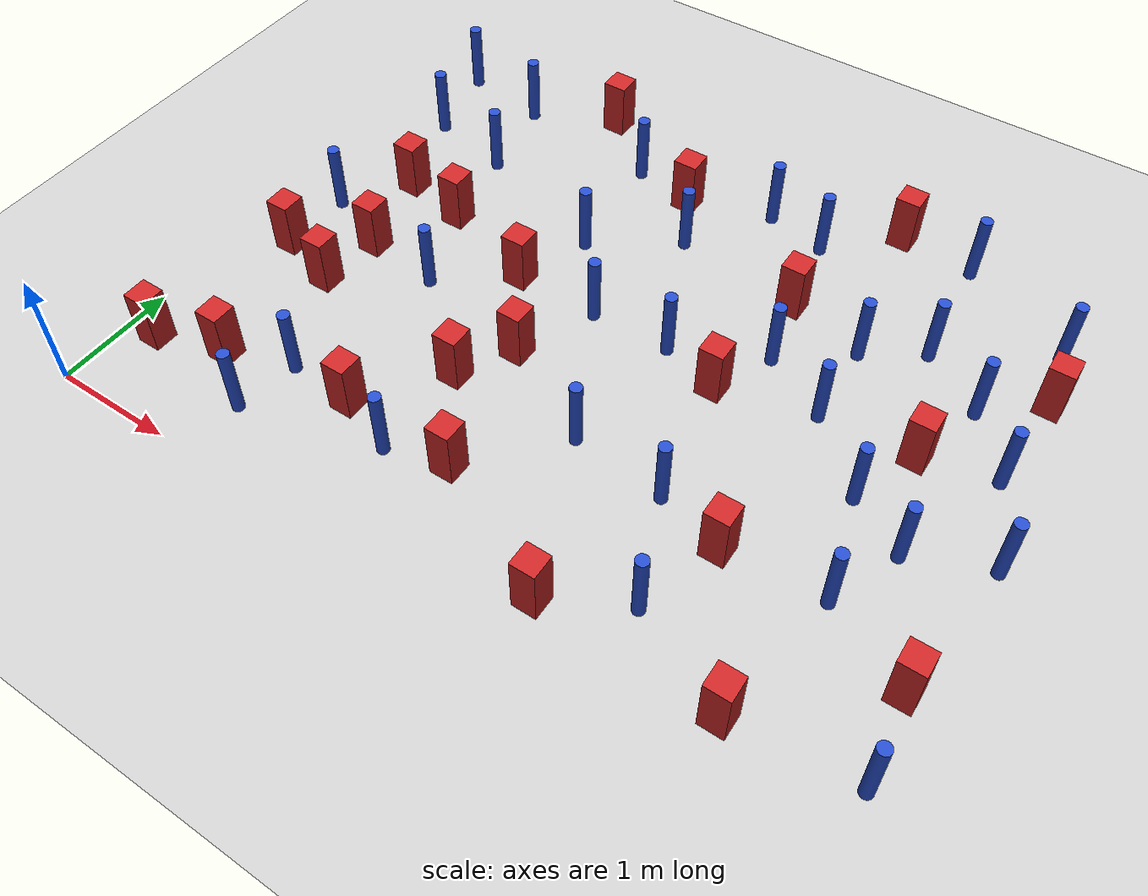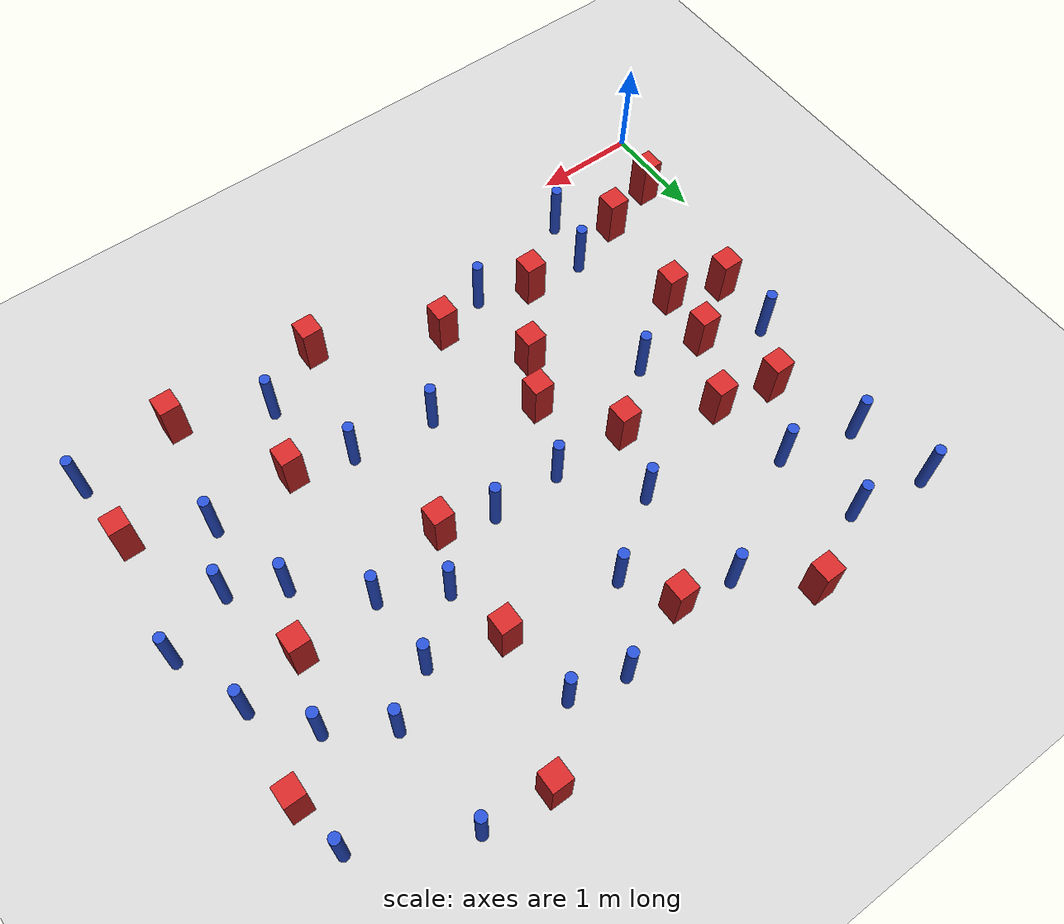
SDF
<sdf version="1.6">
 <world name="default">
  <model name="ground_plane">
   <static>1</static>
   <link name="link">
    <collision name="collision">
     <geometry><plane><normal>0 0 1</normal><size>100 100</size></plane></geometry>
     <surface><friction><ode><mu>100</mu><mu2>50</mu2></ode></friction></surface>
    </collision>
    <visual name="visual">
     <cast_shadows>0</cast_shadows>
     <geometry><plane><normal>0 0 1</normal><size>100 100</size></plane></geometry>
     <material>
      <ambient>1.0 1.0 1.0 1.0</ambient>
      <diffuse>0.8 0.8 0.8 1.0</diffuse>
      <specular>0.01 0.01 0.01 1.000000</specular>
     </material>
    </visual>
   </link>
  </model>
  <model name="pole_obstacle0">
   <static>true</static>
   <pose>5.32144718917 3.82602129919 7.38925637345e-09 -8.47170692798e-08 1.24976764937e-08 -1.74513093023e-07</pose>
   <link name="link">
    <pose>0 0 0.3 0 -0 0</pose>
    <inertial>
     <mass>1</mass>
     <inertia><ixx>0.145833</ixx><ixy>0</ixy><ixz>0</ixz><iyy>0.145833</iyy><iyz>0</iyz><izz>0.125</izz></inertia>
    </inertial>
    <collision name="collision">
     <geometry><cylinder><radius>0.05</radius><length>.6</length></cylinder></geometry>
    </collision>
    <visual name="visual">
     <geometry><cylinder><radius>0.05</radius><length>.6</length></cylinder></geometry>
     <material>
      <script><name>Gazebo/Blue</name><uri>file://media/materials/scripts/gazebo.material</uri></script>
     </material>
    </visual>
   </link>
  </model>
  <model name="pole_obstacle5">
   <static>true</static>
   <pose>6.38069435776 0.460439469425 7.38925637345e-09 -8.47170692799e-08 1.24976765124e-08 -1.74513093015e-07</pose>
   <link name="link">
    <pose>0 0 0.3 0 -0 0</pose>
    <inertial>
     <mass>1</mass>
     <inertia><ixx>0.145833</ixx><ixy>0</ixy><ixz>0</ixz><iyy>0.145833</iyy><iyz>0</iyz><izz>0.125</izz></inertia>
    </inertial>
    <collision name="collision">
     <geometry><cylinder><radius>0.05</radius><length>.6</length></cylinder></geometry>
    </collision>
    <visual name="visual">
     <geometry><cylinder><radius>0.05</radius><length>.6</length></cylinder></geometry>
     <material>
      <script><name>Gazebo/Blue</name><uri>file://media/materials/scripts/gazebo.material</uri></script>
     </material>
    </visual>
   </link>
  </model>
  <model name="square_post_obstacle30">
   <static>true</static>
   <pose>4.02479298882 0.400277509921 1.91545236811e-07 -7.35059704564e-06 1.12565212e-07 2.39332434364e-05</pose>
   <link name="link">
    <pose>0 0 0.25 0 -0 0</pose>
    <inertial>
     <mass>100</mass>
     <inertia>
      <ixx>0.166667</ixx>
      <ixy>0</ixy>
      <ixz>0</ixz>
      <iyy>0.166667</iyy>
      <iyz>0</iyz>
      <izz>0.166667</izz>
     </inertia>
    </inertial>
    <collision name="collision"><geometry><box><size>.2 .2 .5</size></box></geometry></collision>
    <visual name="visual">
     <geometry><box><size>.2 .2 .5</size></box></geometry>
     <material>
      <script><name>Gazebo/Red</name><uri>file://media/materials/scripts/gazebo.material</uri></script>
     </material>
    </visual>
   </link>
  </model>
  <model name="pole_obstacle21">
   <static>true</static>
   <pose>4.30400383236 1.56057290236 7.38925637345e-09 -8.471706928e-08 1.24976765134e-08 -1.74513093015e-07</pose>
   <link name="link">
    <pose>0 0 0.3 0 -0 0</pose>
    <inertial>
     <mass>1</mass>
     <inertia><ixx>0.145833</ixx><ixy>0</ixy><ixz>0</ixz><iyy>0.145833</iyy><iyz>0</iyz><izz>0.125</izz></inertia>
    </inertial>
    <collision name="collision">
     <geometry><cylinder><radius>0.05</radius><length>.6</length></cylinder></geometry>
    </collision>
    <visual name="visual">
     <geometry><cylinder><radius>0.05</radius><length>.6</length></cylinder></geometry>
     <material>
      <script><name>Gazebo/Blue</name><uri>file://media/materials/scripts/gazebo.material</uri></script>
     </material>
    </visual>
   </link>
  </model>
  <model name="square_post_obstacle33">
   <static>true</static>
   <pose>2.90137435559 4.30138916161 1.91545236811e-07 -7.35059704564e-06 1.12565212e-07 2.39332434364e-05</pose>
   <link name="link">
    <pose>0 0 0.25 0 -0 0</pose>
    <inertial>
     <mass>100</mass>
     <inertia>
      <ixx>0.166667</ixx>
      <ixy>0</ixy>
      <ixz>0</ixz>
      <iyy>0.166667</iyy>
      <iyz>0</iyz>
      <izz>0.166667</izz>
     </inertia>
    </inertial>
    <collision name="collision"><geometry><box><size>.2 .2 .5</size></box></geometry></collision>
    <visual name="visual">
     <geometry><box><size>.2 .2 .5</size></box></geometry>
     <material>
      <script><name>Gazebo/Red</name><uri>file://media/materials/scripts/gazebo.material</uri></script>
     </material>
    </visual>
   </link>
  </model>
  <model name="pole_obstacle29">
   <static>true</static>
   <pose>5.24819283443 4.83943282413 7.38925637345e-09 -8.47170692796e-08 1.24976764786e-08 -1.74513093032e-07</pose>
   <link name="link">
    <pose>0 0 0.3 0 -0 0</pose>
    <inertial>
     <mass>1</mass>
     <inertia><ixx>0.145833</ixx><ixy>0</ixy><ixz>0</ixz><iyy>0.145833</iyy><iyz>0</iyz><izz>0.125</izz></inertia>
    </inertial>
    <collision name="collision">
     <geometry><cylinder><radius>0.05</radius><length>.6</length></cylinder></geometry>
    </collision>
    <visual name="visual">
     <geometry><cylinder><radius>0.05</radius><length>.6</length></cylinder></geometry>
     <material>
      <script><name>Gazebo/Blue</name><uri>file://media/materials/scripts/gazebo.material</uri></script>
     </material>
    </visual>
   </link>
  </model>
  <model name="pole_obstacle32">
   <static>true</static>
   <pose>2.38047399173 4.40046870593 7.38925637345e-09 -8.47170692798e-08 1.24976765033e-08 -1.74513093019e-07</pose>
   <link name="link">
    <pose>0 0 0.3 0 -0 0</pose>
    <inertial>
     <mass>1</mass>
     <inertia><ixx>0.145833</ixx><ixy>0</ixy><ixz>0</ixz><iyy>0.145833</iyy><iyz>0</iyz><izz>0.125</izz></inertia>
    </inertial>
    <collision name="collision">
     <geometry><cylinder><radius>0.05</radius><length>.6</length></cylinder></geometry>
    </collision>
    <visual name="visual">
     <geometry><cylinder><radius>0.05</radius><length>.6</length></cylinder></geometry>
     <material>
      <script><name>Gazebo/Blue</name><uri>file://media/materials/scripts/gazebo.material</uri></script>
     </material>
    </visual>
   </link>
  </model>
  <model name="pole_obstacle38">
   <static>true</static>
   <pose>0.452818814249 2.64148295344 7.38925637345e-09 -8.471706928e-08 1.24976765089e-08 -1.74513093016e-07</pose>
   <link name="link">
    <pose>0 0 0.3 0 -0 0</pose>
    <inertial>
     <mass>1</mass>
     <inertia><ixx>0.145833</ixx><ixy>0</ixy><ixz>0</ixz><iyy>0.145833</iyy><iyz>0</iyz><izz>0.125</izz></inertia>
    </inertial>
    <collision name="collision">
     <geometry><cylinder><radius>0.05</radius><length>.6</length></cylinder></geometry>
    </collision>
    <visual name="visual">
     <geometry><cylinder><radius>0.05</radius><length>.6</length></cylinder></geometry>
     <material>
      <script><name>Gazebo/Blue</name><uri>file://media/materials/scripts/gazebo.material</uri></script>
     </material>
    </visual>
   </link>
  </model>
  <model name="pole_obstacle40">
   <static>true</static>
   <pose>0.399652098049 4.66626726235 7.38925637345e-09 -8.471706928e-08 1.24976765079e-08 -1.74513093015e-07</pose>
   <link name="link">
    <pose>0 0 0.3 0 -0 0</pose>
    <inertial>
     <mass>1</mass>
     <inertia><ixx>0.145833</ixx><ixy>0</ixy><ixz>0</ixz><iyy>0.145833</iyy><iyz>0</iyz><izz>0.125</izz></inertia>
    </inertial>
    <collision name="collision">
     <geometry><cylinder><radius>0.05</radius><length>.6</length></cylinder></geometry>
    </collision>
    <visual name="visual">
     <geometry><cylinder><radius>0.05</radius><length>.6</length></cylinder></geometry>
     <material>
      <script><name>Gazebo/Blue</name><uri>file://media/materials/scripts/gazebo.material</uri></script>
     </material>
    </visual>
   </link>
  </model>
  <model name="pole_obstacle42">
   <static>true</static>
   <pose>4.34346520755 3.11708515062 7.38925637345e-09 -8.47170692798e-08 1.24976764937e-08 -1.74513093023e-07</pose>
   <link name="link">
    <pose>0 0 0.3 0 -0 0</pose>
    <inertial>
     <mass>1</mass>
     <inertia><ixx>0.145833</ixx><ixy>0</ixy><ixz>0</ixz><iyy>0.145833</iyy><iyz>0</iyz><izz>0.125</izz></inertia>
    </inertial>
    <collision name="collision">
     <geometry><cylinder><radius>0.05</radius><length>.6</length></cylinder></geometry>
    </collision>
    <visual name="visual">
     <geometry><cylinder><radius>0.05</radius><length>.6</length></cylinder></geometry>
     <material>
      <script><name>Gazebo/Blue</name><uri>file://media/materials/scripts/gazebo.material</uri></script>
     </material>
    </visual>
   </link>
  </model>
  <model name="square_post_obstacle47">
   <static>true</static>
   <pose>2.24440711028 2.76406360062 1.91545236811e-07 -7.35059704564e-06 1.12565212e-07 2.39332434364e-05</pose>
   <link name="link">
    <pose>0 0 0.25 0 -0 0</pose>
    <inertial>
     <mass>100</mass>
     <inertia>
      <ixx>0.166667</ixx>
      <ixy>0</ixy>
      <ixz>0</ixz>
      <iyy>0.166667</iyy>
      <iyz>0</iyz>
      <izz>0.166667</izz>
     </inertia>
    </inertial>
    <collision name="collision"><geometry><box><size>.2 .2 .5</size></box></geometry></collision>
    <visual name="visual">
     <geometry><box><size>.2 .2 .5</size></box></geometry>
     <material>
      <script><name>Gazebo/Red</name><uri>file://media/materials/scripts/gazebo.material</uri></script>
     </material>
    </visual>
   </link>
  </model>
  <model name="pole_obstacle47">
   <static>true</static>
   <pose>2.46240716273 3.3805450731 7.38925637345e-09 -8.47170692798e-08 1.24976764939e-08 -1.74513093025e-07</pose>
   <link name="link">
    <pose>0 0 0.3 0 -0 0</pose>
    <inertial>
     <mass>1</mass>
     <inertia><ixx>0.145833</ixx><ixy>0</ixy><ixz>0</ixz><iyy>0.145833</iyy><iyz>0</iyz><izz>0.125</izz></inertia>
    </inertial>
    <collision name="collision">
     <geometry><cylinder><radius>0.05</radius><length>.6</length></cylinder></geometry>
    </collision>
    <visual name="visual">
     <geometry><cylinder><radius>0.05</radius><length>.6</length></cylinder></geometry>
     <material>
      <script><name>Gazebo/Blue</name><uri>file://media/materials/scripts/gazebo.material</uri></script>
     </material>
    </visual>
   </link>
  </model>
  <model name="pole_obstacle49">
   <static>true</static>
   <pose>2.42810965009 0.809213815353 7.38925637345e-09 -8.471706928e-08 1.24976765177e-08 -1.74513093012e-07</pose>
   <link name="link">
    <pose>0 0 0.3 0 -0 0</pose>
    <inertial>
     <mass>1</mass>
     <inertia><ixx>0.145833</ixx><ixy>0</ixy><ixz>0</ixz><iyy>0.145833</iyy><iyz>0</iyz><izz>0.125</izz></inertia>
    </inertial>
    <collision name="collision">
     <geometry><cylinder><radius>0.05</radius><length>.6</length></cylinder></geometry>
    </collision>
    <visual name="visual">
     <geometry><cylinder><radius>0.05</radius><length>.6</length></cylinder></geometry>
     <material>
      <script><name>Gazebo/Blue</name><uri>file://media/materials/scripts/gazebo.material</uri></script>
     </material>
    </visual>
   </link>
  </model>
  <model name="pole_obstacle50">
   <static>true</static>
   <pose>5.82897703839 3.48767133832 7.38925637345e-09 -8.47170692798e-08 1.24976764937e-08 -1.74513093023e-07</pose>
   <link name="link">
    <pose>0 0 0.3 0 -0 0</pose>
    <inertial>
     <mass>1</mass>
     <inertia><ixx>0.145833</ixx><ixy>0</ixy><ixz>0</ixz><iyy>0.145833</iyy><iyz>0</iyz><izz>0.125</izz></inertia>
    </inertial>
    <collision name="collision">
     <geometry><cylinder><radius>0.05</radius><length>.6</length></cylinder></geometry>
    </collision>
    <visual name="visual">
     <geometry><cylinder><radius>0.05</radius><length>.6</length></cylinder></geometry>
     <material>
      <script><name>Gazebo/Blue</name><uri>file://media/materials/scripts/gazebo.material</uri></script>
     </material>
    </visual>
   </link>
  </model>
  <model name="pole_obstacle52">
   <static>true</static>
   <pose>5.87169383341 2.04341857923 7.38925637345e-09 -8.47170692799e-08 1.24976765078e-08 -1.74513093016e-07</pose>
   <link name="link">
    <pose>0 0 0.3 0 -0 0</pose>
    <inertial>
     <mass>1</mass>
     <inertia><ixx>0.145833</ixx><ixy>0</ixy><ixz>0</ixz><iyy>0.145833</iyy><iyz>0</iyz><izz>0.125</izz></inertia>
    </inertial>
    <collision name="collision">
     <geometry><cylinder><radius>0.05</radius><length>.6</length></cylinder></geometry>
    </collision>
    <visual name="visual">
     <geometry><cylinder><radius>0.05</radius><length>.6</length></cylinder></geometry>
     <material>
      <script><name>Gazebo/Blue</name><uri>file://media/materials/scripts/gazebo.material</uri></script>
     </material>
    </visual>
   </link>
  </model>
  <model name="pole_obstacle53">
   <static>true</static>
   <pose>4.10773990392 4.4101130287 7.38925637345e-09 -8.47170692796e-08 1.24976764786e-08 -1.74513093032e-07</pose>
   <link name="link">
    <pose>0 0 0.3 0 -0 0</pose>
    <inertial>
     <mass>1</mass>
     <inertia><ixx>0.145833</ixx><ixy>0</ixy><ixz>0</ixz><iyy>0.145833</iyy><iyz>0</iyz><izz>0.125</izz></inertia>
    </inertial>
    <collision name="collision">
     <geometry><cylinder><radius>0.05</radius><length>.6</length></cylinder></geometry>
    </collision>
    <visual name="visual">
     <geometry><cylinder><radius>0.05</radius><length>.6</length></cylinder></geometry>
     <material>
      <script><name>Gazebo/Blue</name><uri>file://media/materials/scripts/gazebo.material</uri></script>
     </material>
    </visual>
   </link>
  </model>
  <model name="pole_obstacle54">
   <static>true</static>
   <pose>3.14468060071 3.84523506817 7.38925637345e-09 -8.47170692798e-08 1.24976764939e-08 -1.74513093025e-07</pose>
   <link name="link">
    <pose>0 0 0.3 0 -0 0</pose>
    <inertial>
     <mass>1</mass>
     <inertia><ixx>0.145833</ixx><ixy>0</ixy><ixz>0</ixz><iyy>0.145833</iyy><iyz>0</iyz><izz>0.125</izz></inertia>
    </inertial>
    <collision name="collision">
     <geometry><cylinder><radius>0.05</radius><length>.6</length></cylinder></geometry>
    </collision>
    <visual name="visual">
     <geometry><cylinder><radius>0.05</radius><length>.6</length></cylinder></geometry>
     <material>
      <script><name>Gazebo/Blue</name><uri>file://media/materials/scripts/gazebo.material</uri></script>
     </material>
    </visual>
   </link>
  </model>
  <model name="pole_obstacle60">
   <static>true</static>
   <pose>4.88557838671 2.82098925739 7.38925637345e-09 -8.47170692798e-08 1.24976764937e-08 -1.74513093023e-07</pose>
   <link name="link">
    <pose>0 0 0.3 0 -0 0</pose>
    <inertial>
     <mass>1</mass>
     <inertia><ixx>0.145833</ixx><ixy>0</ixy><ixz>0</ixz><iyy>0.145833</iyy><iyz>0</iyz><izz>0.125</izz></inertia>
    </inertial>
    <collision name="collision">
     <geometry><cylinder><radius>0.05</radius><length>.6</length></cylinder></geometry>
    </collision>
    <visual name="visual">
     <geometry><cylinder><radius>0.05</radius><length>.6</length></cylinder></geometry>
     <material>
      <script><name>Gazebo/Blue</name><uri>file://media/materials/scripts/gazebo.material</uri></script>
     </material>
    </visual>
   </link>
  </model>
  <model name="square_post_obstacle62">
   <static>true</static>
   <pose>1.38895928444 3.05278624433 1.91545236811e-07 -7.35059704564e-06 1.12565212e-07 2.39332434364e-05</pose>
   <link name="link">
    <pose>0 0 0.25 0 -0 0</pose>
    <inertial>
     <mass>100</mass>
     <inertia>
      <ixx>0.166667</ixx>
      <ixy>0</ixy>
      <ixz>0</ixz>
      <iyy>0.166667</iyy>
      <iyz>0</iyz>
      <izz>0.166667</izz>
     </inertia>
    </inertial>
    <collision name="collision"><geometry><box><size>.2 .2 .5</size></box></geometry></collision>
    <visual name="visual">
     <geometry><box><size>.2 .2 .5</size></box></geometry>
     <material>
      <script><name>Gazebo/Red</name><uri>file://media/materials/scripts/gazebo.material</uri></script>
     </material>
    </visual>
   </link>
  </model>
  <model name="square_post_obstacle70">
   <static>true</static>
   <pose>0.956690589959 1.86831356773 1.91545236811e-07 -7.35059704564e-06 1.12565212e-07 2.39332434364e-05</pose>
   <link name="link">
    <pose>0 0 0.25 0 -0 0</pose>
    <inertial>
     <mass>100</mass>
     <inertia>
      <ixx>0.166667</ixx>
      <ixy>0</ixy>
      <ixz>0</ixz>
      <iyy>0.166667</iyy>
      <iyz>0</iyz>
      <izz>0.166667</izz>
     </inertia>
    </inertial>
    <collision name="collision"><geometry><box><size>.2 .2 .5</size></box></geometry></collision>
    <visual name="visual">
     <geometry><box><size>.2 .2 .5</size></box></geometry>
     <material>
      <script><name>Gazebo/Red</name><uri>file://media/materials/scripts/gazebo.material</uri></script>
     </material>
    </visual>
   </link>
  </model>
  <model name="pole_obstacle68">
   <static>true</static>
   <pose>6.47694260746 2.29938427035 7.38925637345e-09 -8.47170692798e-08 1.24976764937e-08 -1.74513093023e-07</pose>
   <link name="link">
    <pose>0 0 0.3 0 -0 0</pose>
    <inertial>
     <mass>1</mass>
     <inertia><ixx>0.145833</ixx><ixy>0</ixy><ixz>0</ixz><iyy>0.145833</iyy><iyz>0</iyz><izz>0.125</izz></inertia>
    </inertial>
    <collision name="collision">
     <geometry><cylinder><radius>0.05</radius><length>.6</length></cylinder></geometry>
    </collision>
    <visual name="visual">
     <geometry><cylinder><radius>0.05</radius><length>.6</length></cylinder></geometry>
     <material>
      <script><name>Gazebo/Blue</name><uri>file://media/materials/scripts/gazebo.material</uri></script>
     </material>
    </visual>
   </link>
  </model>
  <model name="pole_obstacle73">
   <static>true</static>
   <pose>3.52796175323 1.65245697408 7.38925637345e-09 -8.471706928e-08 1.24976765152e-08 -1.74513093012e-07</pose>
   <link name="link">
    <pose>0 0 0.3 0 -0 0</pose>
    <inertial>
     <mass>1</mass>
     <inertia><ixx>0.145833</ixx><ixy>0</ixy><ixz>0</ixz><iyy>0.145833</iyy><iyz>0</iyz><izz>0.125</izz></inertia>
    </inertial>
    <collision name="collision">
     <geometry><cylinder><radius>0.05</radius><length>.6</length></cylinder></geometry>
    </collision>
    <visual name="visual">
     <geometry><cylinder><radius>0.05</radius><length>.6</length></cylinder></geometry>
     <material>
      <script><name>Gazebo/Blue</name><uri>file://media/materials/scripts/gazebo.material</uri></script>
     </material>
    </visual>
   </link>
  </model>
  <model name="pole_obstacle77">
   <static>true</static>
   <pose>4.63677190316 0.734329324034 7.38925637345e-09 -8.47170692799e-08 1.24976765038e-08 -1.74513093018e-07</pose>
   <link name="link">
    <pose>0 0 0.3 0 -0 0</pose>
    <inertial>
     <mass>1</mass>
     <inertia><ixx>0.145833</ixx><ixy>0</ixy><ixz>0</ixz><iyy>0.145833</iyy><iyz>0</iyz><izz>0.125</izz></inertia>
    </inertial>
    <collision name="collision">
     <geometry><cylinder><radius>0.05</radius><length>.6</length></cylinder></geometry>
    </collision>
    <visual name="visual">
     <geometry><cylinder><radius>0.05</radius><length>.6</length></cylinder></geometry>
     <material>
      <script><name>Gazebo/Blue</name><uri>file://media/materials/scripts/gazebo.material</uri></script>
     </material>
    </visual>
   </link>
  </model>
  <model name="pole_obstacle80">
   <static>true</static>
   <pose>1.66154013875 2.32075922238 7.38925637345e-09 -8.47170692799e-08 1.24976765053e-08 -1.74513093017e-07</pose>
   <link name="link">
    <pose>0 0 0.3 0 -0 0</pose>
    <inertial>
     <mass>1</mass>
     <inertia><ixx>0.145833</ixx><ixy>0</ixy><ixz>0</ixz><iyy>0.145833</iyy><iyz>0</iyz><izz>0.125</izz></inertia>
    </inertial>
    <collision name="collision">
     <geometry><cylinder><radius>0.05</radius><length>.6</length></cylinder></geometry>
    </collision>
    <visual name="visual">
     <geometry><cylinder><radius>0.05</radius><length>.6</length></cylinder></geometry>
     <material>
      <script><name>Gazebo/Blue</name><uri>file://media/materials/scripts/gazebo.material</uri></script>
     </material>
    </visual>
   </link>
  </model>
  <model name="square_post_obstacle90">
   <static>true</static>
   <pose>1.02446236657 2.40409980556 1.91545236811e-07 -7.35059704564e-06 1.12565212e-07 2.39332434364e-05</pose>
   <link name="link">
    <pose>0 0 0.25 0 -0 0</pose>
    <inertial>
     <mass>100</mass>
     <inertia>
      <ixx>0.166667</ixx>
      <ixy>0</ixy>
      <ixz>0</ixz>
      <iyy>0.166667</iyy>
      <iyz>0</iyz>
      <izz>0.166667</izz>
     </inertia>
    </inertial>
    <collision name="collision"><geometry><box><size>.2 .2 .5</size></box></geometry></collision>
    <visual name="visual">
     <geometry><box><size>.2 .2 .5</size></box></geometry>
     <material>
      <script><name>Gazebo/Red</name><uri>file://media/materials/scripts/gazebo.material</uri></script>
     </material>
    </visual>
   </link>
  </model>
  <model name="pole_obstacle103">
   <static>true</static>
   <pose>6.17088672799 4.35400729988 7.38925637345e-09 -8.47170692796e-08 1.24976764786e-08 -1.74513093032e-07</pose>
   <link name="link">
    <pose>0 0 0.3 0 -0 0</pose>
    <inertial>
     <mass>1</mass>
     <inertia><ixx>0.145833</ixx><ixy>0</ixy><ixz>0</ixz><iyy>0.145833</iyy><iyz>0</iyz><izz>0.125</izz></inertia>
    </inertial>
    <collision name="collision">
     <geometry><cylinder><radius>0.05</radius><length>.6</length></cylinder></geometry>
    </collision>
    <visual name="visual">
     <geometry><cylinder><radius>0.05</radius><length>.6</length></cylinder></geometry>
     <material>
      <script><name>Gazebo/Blue</name><uri>file://media/materials/scripts/gazebo.material</uri></script>
     </material>
    </visual>
   </link>
  </model>
  <model name="pole_obstacle107">
   <static>true</static>
   <pose>5.63572531557 1.46728842441 7.38925637345e-09 -8.471706928e-08 1.24976765134e-08 -1.74513093015e-07</pose>
   <link name="link">
    <pose>0 0 0.3 0 -0 0</pose>
    <inertial>
     <mass>1</mass>
     <inertia><ixx>0.145833</ixx><ixy>0</ixy><ixz>0</ixz><iyy>0.145833</iyy><iyz>0</iyz><izz>0.125</izz></inertia>
    </inertial>
    <collision name="collision">
     <geometry><cylinder><radius>0.05</radius><length>.6</length></cylinder></geometry>
    </collision>
    <visual name="visual">
     <geometry><cylinder><radius>0.05</radius><length>.6</length></cylinder></geometry>
     <material>
      <script><name>Gazebo/Blue</name><uri>file://media/materials/scripts/gazebo.material</uri></script>
     </material>
    </visual>
   </link>
  </model>
  <model name="pole_obstacle114">
   <static>true</static>
   <pose>1.28764315999 0.513358374364 7.38925637345e-09 -8.47170692799e-08 1.24976765051e-08 -1.74513093017e-07</pose>
   <link name="link">
    <pose>0 0 0.3 0 -0 0</pose>
    <inertial>
     <mass>1</mass>
     <inertia><ixx>0.145833</ixx><ixy>0</ixy><ixz>0</ixz><iyy>0.145833</iyy><iyz>0</iyz><izz>0.125</izz></inertia>
    </inertial>
    <collision name="collision">
     <geometry><cylinder><radius>0.05</radius><length>.6</length></cylinder></geometry>
    </collision>
    <visual name="visual">
     <geometry><cylinder><radius>0.05</radius><length>.6</length></cylinder></geometry>
     <material>
      <script><name>Gazebo/Blue</name><uri>file://media/materials/scripts/gazebo.material</uri></script>
     </material>
    </visual>
   </link>
  </model>
  <model name="square_post_obstacle102">
   <static>true</static>
   <pose>2.68810067651 2.09615478504 1.91545236811e-07 -7.35059704564e-06 1.12565212e-07 2.39332434364e-05</pose>
   <link name="link">
    <pose>0 0 0.25 0 -0 0</pose>
    <inertial>
     <mass>100</mass>
     <inertia>
      <ixx>0.166667</ixx>
      <ixy>0</ixy>
      <ixz>0</ixz>
      <iyy>0.166667</iyy>
      <iyz>0</iyz>
      <izz>0.166667</izz>
     </inertia>
    </inertial>
    <collision name="collision"><geometry><box><size>.2 .2 .5</size></box></geometry></collision>
    <visual name="visual">
     <geometry><box><size>.2 .2 .5</size></box></geometry>
     <material>
      <script><name>Gazebo/Red</name><uri>file://media/materials/scripts/gazebo.material</uri></script>
     </material>
    </visual>
   </link>
  </model>
  <model name="pole_obstacle116">
   <static>true</static>
   <pose>1.25952760537 3.78938454021 7.38925637345e-09 -8.47170692799e-08 1.24976765053e-08 -1.74513093017e-07</pose>
   <link name="link">
    <pose>0 0 0.3 0 -0 0</pose>
    <inertial>
     <mass>1</mass>
     <inertia><ixx>0.145833</ixx><ixy>0</ixy><ixz>0</ixz><iyy>0.145833</iyy><iyz>0</iyz><izz>0.125</izz></inertia>
    </inertial>
    <collision name="collision">
     <geometry><cylinder><radius>0.05</radius><length>.6</length></cylinder></geometry>
    </collision>
    <visual name="visual">
     <geometry><cylinder><radius>0.05</radius><length>.6</length></cylinder></geometry>
     <material>
      <script><name>Gazebo/Blue</name><uri>file://media/materials/scripts/gazebo.material</uri></script>
     </material>
    </visual>
   </link>
  </model>
  <model name="pole_obstacle119">
   <static>true</static>
   <pose>2.96181060538 2.75108590298 7.38925637345e-09 -8.47170692798e-08 1.24976764939e-08 -1.74513093025e-07</pose>
   <link name="link">
    <pose>0 0 0.3 0 -0 0</pose>
    <inertial>
     <mass>1</mass>
     <inertia><ixx>0.145833</ixx><ixy>0</ixy><ixz>0</ixz><iyy>0.145833</iyy><iyz>0</iyz><izz>0.125</izz></inertia>
    </inertial>
    <collision name="collision">
     <geometry><cylinder><radius>0.05</radius><length>.6</length></cylinder></geometry>
    </collision>
    <visual name="visual">
     <geometry><cylinder><radius>0.05</radius><length>.6</length></cylinder></geometry>
     <material>
      <script><name>Gazebo/Blue</name><uri>file://media/materials/scripts/gazebo.material</uri></script>
     </material>
    </visual>
   </link>
  </model>
  <model name="square_post_obstacle110">
   <static>true</static>
   <pose>1.84830865373 4.86511684313 1.91545236811e-07 -7.35059704564e-06 1.12565212e-07 2.39332434364e-05</pose>
   <link name="link">
    <pose>0 0 0.25 0 -0 0</pose>
    <inertial>
     <mass>100</mass>
     <inertia>
      <ixx>0.166667</ixx>
      <ixy>0</ixy>
      <ixz>0</ixz>
      <iyy>0.166667</iyy>
      <iyz>0</iyz>
      <izz>0.166667</izz>
     </inertia>
    </inertial>
    <collision name="collision"><geometry><box><size>.2 .2 .5</size></box></geometry></collision>
    <visual name="visual">
     <geometry><box><size>.2 .2 .5</size></box></geometry>
     <material>
      <script><name>Gazebo/Red</name><uri>file://media/materials/scripts/gazebo.material</uri></script>
     </material>
    </visual>
   </link>
  </model>
  <model name="pole_obstacle122">
   <static>true</static>
   <pose>4.86578190907 3.53058710517 7.38925637345e-09 -8.47170692798e-08 1.24976764937e-08 -1.74513093023e-07</pose>
   <link name="link">
    <pose>0 0 0.3 0 -0 0</pose>
    <inertial>
     <mass>1</mass>
     <inertia><ixx>0.145833</ixx><ixy>0</ixy><ixz>0</ixz><iyy>0.145833</iyy><iyz>0</iyz><izz>0.125</izz></inertia>
    </inertial>
    <collision name="collision">
     <geometry><cylinder><radius>0.05</radius><length>.6</length></cylinder></geometry>
    </collision>
    <visual name="visual">
     <geometry><cylinder><radius>0.05</radius><length>.6</length></cylinder></geometry>
     <material>
      <script><name>Gazebo/Blue</name><uri>file://media/materials/scripts/gazebo.material</uri></script>
     </material>
    </visual>
   </link>
  </model>
  <model name="pole_obstacle123">
   <static>true</static>
   <pose>6.21491854289 3.00044352734 7.38925637345e-09 -8.47170692798e-08 1.24976764937e-08 -1.74513093023e-07</pose>
   <link name="link">
    <pose>0 0 0.3 0 -0 0</pose>
    <inertial>
     <mass>1</mass>
     <inertia><ixx>0.145833</ixx><ixy>0</ixy><ixz>0</ixz><iyy>0.145833</iyy><iyz>0</iyz><izz>0.125</izz></inertia>
    </inertial>
    <collision name="collision">
     <geometry><cylinder><radius>0.05</radius><length>.6</length></cylinder></geometry>
    </collision>
    <visual name="visual">
     <geometry><cylinder><radius>0.05</radius><length>.6</length></cylinder></geometry>
     <material>
      <script><name>Gazebo/Blue</name><uri>file://media/materials/scripts/gazebo.material</uri></script>
     </material>
    </visual>
   </link>
  </model>
  <model name="square_post_obstacle123">
   <static>true</static>
   <pose>1.94591539607 0.990615492558 1.91545236811e-07 -7.35059704564e-06 1.12565212e-07 2.39332434364e-05</pose>
   <link name="link">
    <pose>0 0 0.25 0 -0 0</pose>
    <inertial>
     <mass>100</mass>
     <inertia>
      <ixx>0.166667</ixx>
      <ixy>0</ixy>
      <ixz>0</ixz>
      <iyy>0.166667</iyy>
      <iyz>0</iyz>
      <izz>0.166667</izz>
     </inertia>
    </inertial>
    <collision name="collision"><geometry><box><size>.2 .2 .5</size></box></geometry></collision>
    <visual name="visual">
     <geometry><box><size>.2 .2 .5</size></box></geometry>
     <material>
      <script><name>Gazebo/Red</name><uri>file://media/materials/scripts/gazebo.material</uri></script>
     </material>
    </visual>
   </link>
  </model>
  <model name="pole_obstacle143">
   <static>true</static>
   <pose>1.38386867412 1.03060522622 7.38925637345e-09 -8.471706928e-08 1.24976765116e-08 -1.74513093013e-07</pose>
   <link name="link">
    <pose>0 0 0.3 0 -0 0</pose>
    <inertial>
     <mass>1</mass>
     <inertia><ixx>0.145833</ixx><ixy>0</ixy><ixz>0</ixz><iyy>0.145833</iyy><iyz>0</iyz><izz>0.125</izz></inertia>
    </inertial>
    <collision name="collision">
     <geometry><cylinder><radius>0.05</radius><length>.6</length></cylinder></geometry>
    </collision>
    <visual name="visual">
     <geometry><cylinder><radius>0.05</radius><length>.6</length></cylinder></geometry>
     <material>
      <script><name>Gazebo/Blue</name><uri>file://media/materials/scripts/gazebo.material</uri></script>
     </material>
    </visual>
   </link>
  </model>
  <model name="pole_obstacle145">
   <static>true</static>
   <pose>5.41730590883 2.3019205401 7.38925637345e-09 -8.47170692798e-08 1.24976764937e-08 -1.74513093023e-07</pose>
   <link name="link">
    <pose>0 0 0.3 0 -0 0</pose>
    <inertial>
     <mass>1</mass>
     <inertia><ixx>0.145833</ixx><ixy>0</ixy><ixz>0</ixz><iyy>0.145833</iyy><iyz>0</iyz><izz>0.125</izz></inertia>
    </inertial>
    <collision name="collision">
     <geometry><cylinder><radius>0.05</radius><length>.6</length></cylinder></geometry>
    </collision>
    <visual name="visual">
     <geometry><cylinder><radius>0.05</radius><length>.6</length></cylinder></geometry>
     <material>
      <script><name>Gazebo/Blue</name><uri>file://media/materials/scripts/gazebo.material</uri></script>
     </material>
    </visual>
   </link>
  </model>
  <model name="square_post_obstacle137">
   <static>true</static>
   <pose>4.10916617468 2.61843807219 1.91545236811e-07 -7.35059704564e-06 1.12565212e-07 2.39332434364e-05</pose>
   <link name="link">
    <pose>0 0 0.25 0 -0 0</pose>
    <inertial>
     <mass>100</mass>
     <inertia>
      <ixx>0.166667</ixx>
      <ixy>0</ixy>
      <ixz>0</ixz>
      <iyy>0.166667</iyy>
      <iyz>0</iyz>
      <izz>0.166667</izz>
     </inertia>
    </inertial>
    <collision name="collision"><geometry><box><size>.2 .2 .5</size></box></geometry></collision>
    <visual name="visual">
     <geometry><box><size>.2 .2 .5</size></box></geometry>
     <material>
      <script><name>Gazebo/Red</name><uri>file://media/materials/scripts/gazebo.material</uri></script>
     </material>
    </visual>
   </link>
  </model>
  <model name="square_post_obstacle138">
   <static>true</static>
   <pose>0.282721464282 0.670034500145 1.91545236811e-07 -7.35059704564e-06 1.12565212e-07 2.39332434364e-05</pose>
   <link name="link">
    <pose>0 0 0.25 0 -0 0</pose>
    <inertial>
     <mass>100</mass>
     <inertia>
      <ixx>0.166667</ixx>
      <ixy>0</ixy>
      <ixz>0</ixz>
      <iyy>0.166667</iyy>
      <iyz>0</iyz>
      <izz>0.166667</izz>
     </inertia>
    </inertial>
    <collision name="collision"><geometry><box><size>.2 .2 .5</size></box></geometry></collision>
    <visual name="visual">
     <geometry><box><size>.2 .2 .5</size></box></geometry>
     <material>
      <script><name>Gazebo/Red</name><uri>file://media/materials/scripts/gazebo.material</uri></script>
     </material>
    </visual>
   </link>
  </model>
  <model name="square_post_obstacle142">
   <static>true</static>
   <pose>2.43643360952 1.64685725559 1.91545236811e-07 -7.35059704564e-06 1.12565212e-07 2.39332434364e-05</pose>
   <link name="link">
    <pose>0 0 0.25 0 -0 0</pose>
    <inertial>
     <mass>100</mass>
     <inertia>
      <ixx>0.166667</ixx>
      <ixy>0</ixy>
      <ixz>0</ixz>
      <iyy>0.166667</iyy>
      <iyz>0</iyz>
      <izz>0.166667</izz>
     </inertia>
    </inertial>
    <collision name="collision"><geometry><box><size>.2 .2 .5</size></box></geometry></collision>
    <visual name="visual">
     <geometry><box><size>.2 .2 .5</size></box></geometry>
     <material>
      <script><name>Gazebo/Red</name><uri>file://media/materials/scripts/gazebo.material</uri></script>
     </material>
    </visual>
   </link>
  </model>
  <model name="pole_obstacle159">
   <static>true</static>
   <pose>3.62934567249 2.76052203347 7.38925637345e-09 -8.47170692798e-08 1.24976764939e-08 -1.74513093025e-07</pose>
   <link name="link">
    <pose>0 0 0.3 0 -0 0</pose>
    <inertial>
     <mass>1</mass>
     <inertia><ixx>0.145833</ixx><ixy>0</ixy><ixz>0</ixz><iyy>0.145833</iyy><iyz>0</iyz><izz>0.125</izz></inertia>
    </inertial>
    <collision name="collision">
     <geometry><cylinder><radius>0.05</radius><length>.6</length></cylinder></geometry>
    </collision>
    <visual name="visual">
     <geometry><cylinder><radius>0.05</radius><length>.6</length></cylinder></geometry>
     <material>
      <script><name>Gazebo/Blue</name><uri>file://media/materials/scripts/gazebo.material</uri></script>
     </material>
    </visual>
   </link>
  </model>
  <model name="square_post_obstacle162">
   <static>true</static>
   <pose>5.4364149272 0.366920272132 1.91545236811e-07 -7.35059704564e-06 1.12565212e-07 2.39332434364e-05</pose>
   <link name="link">
    <pose>0 0 0.25 0 -0 0</pose>
    <inertial>
     <mass>100</mass>
     <inertia>
      <ixx>0.166667</ixx>
      <ixy>0</ixy>
      <ixz>0</ixz>
      <iyy>0.166667</iyy>
      <iyz>0</iyz>
      <izz>0.166667</izz>
     </inertia>
    </inertial>
    <collision name="collision"><geometry><box><size>.2 .2 .5</size></box></geometry></collision>
    <visual name="visual">
     <geometry><box><size>.2 .2 .5</size></box></geometry>
     <material>
      <script><name>Gazebo/Red</name><uri>file://media/materials/scripts/gazebo.material</uri></script>
     </material>
    </visual>
   </link>
  </model>
  <model name="pole_obstacle179">
   <static>true</static>
   <pose>1.12842346093 4.5477955939 7.38925637345e-09 -8.47170692799e-08 1.24976765033e-08 -1.74513093018e-07</pose>
   <link name="link">
    <pose>0 0 0.3 0 -0 0</pose>
    <inertial>
     <mass>1</mass>
     <inertia><ixx>0.145833</ixx><ixy>0</ixy><ixz>0</ixz><iyy>0.145833</iyy><iyz>0</iyz><izz>0.125</izz></inertia>
    </inertial>
    <collision name="collision">
     <geometry><cylinder><radius>0.05</radius><length>.6</length></cylinder></geometry>
    </collision>
    <visual name="visual">
     <geometry><cylinder><radius>0.05</radius><length>.6</length></cylinder></geometry>
     <material>
      <script><name>Gazebo/Blue</name><uri>file://media/materials/scripts/gazebo.material</uri></script>
     </material>
    </visual>
   </link>
  </model>
  <model name="square_post_obstacle179">
   <static>true</static>
   <pose>4.84132598355 1.40874332264 1.91545236811e-07 -7.35059704564e-06 1.12565212e-07 2.39332434364e-05</pose>
   <link name="link">
    <pose>0 0 0.25 0 -0 0</pose>
    <inertial>
     <mass>100</mass>
     <inertia>
      <ixx>0.166667</ixx>
      <ixy>0</ixy>
      <ixz>0</ixz>
      <iyy>0.166667</iyy>
      <iyz>0</iyz>
      <izz>0.166667</izz>
     </inertia>
    </inertial>
    <collision name="collision"><geometry><box><size>.2 .2 .5</size></box></geometry></collision>
    <visual name="visual">
     <geometry><box><size>.2 .2 .5</size></box></geometry>
     <material>
      <script><name>Gazebo/Red</name><uri>file://media/materials/scripts/gazebo.material</uri></script>
     </material>
    </visual>
   </link>
  </model>
  <model name="square_post_obstacle182">
   <static>true</static>
   <pose>6.26268058204 3.84760794297 1.91545236811e-07 -7.35059704564e-06 1.12565212e-07 2.39332434364e-05</pose>
   <link name="link">
    <pose>0 0 0.25 0 -0 0</pose>
    <inertial>
     <mass>100</mass>
     <inertia>
      <ixx>0.166667</ixx>
      <ixy>0</ixy>
      <ixz>0</ixz>
      <iyy>0.166667</iyy>
      <iyz>0</iyz>
      <izz>0.166667</izz>
     </inertia>
    </inertial>
    <collision name="collision"><geometry><box><size>.2 .2 .5</size></box></geometry></collision>
    <visual name="visual">
     <geometry><box><size>.2 .2 .5</size></box></geometry>
     <material>
      <script><name>Gazebo/Red</name><uri>file://media/materials/scripts/gazebo.material</uri></script>
     </material>
    </visual>
   </link>
  </model>
  <model name="square_post_obstacle187">
   <static>true</static>
   <pose>0.829529753937 3.16770089456 1.91545236811e-07 -7.35059704564e-06 1.12565212e-07 2.39332434364e-05</pose>
   <link name="link">
    <pose>0 0 0.25 0 -0 0</pose>
    <inertial>
     <mass>100</mass>
     <inertia>
      <ixx>0.166667</ixx>
      <ixy>0</ixy>
      <ixz>0</ixz>
      <iyy>0.166667</iyy>
      <iyz>0</iyz>
      <izz>0.166667</izz>
     </inertia>
    </inertial>
    <collision name="collision"><geometry><box><size>.2 .2 .5</size></box></geometry></collision>
    <visual name="visual">
     <geometry><box><size>.2 .2 .5</size></box></geometry>
     <material>
      <script><name>Gazebo/Red</name><uri>file://media/materials/scripts/gazebo.material</uri></script>
     </material>
    </visual>
   </link>
  </model>
  <model name="square_post_obstacle189">
   <static>true</static>
   <pose>4.6229307679 4.90246742261 1.91545236811e-07 -7.35059704564e-06 1.12565212e-07 2.39332434364e-05</pose>
   <link name="link">
    <pose>0 0 0.25 0 -0 0</pose>
    <inertial>
     <mass>100</mass>
     <inertia>
      <ixx>0.166667</ixx>
      <ixy>0</ixy>
      <ixz>0</ixz>
      <iyy>0.166667</iyy>
      <iyz>0</iyz>
      <izz>0.166667</izz>
     </inertia>
    </inertial>
    <collision name="collision"><geometry><box><size>.2 .2 .5</size></box></geometry></collision>
    <visual name="visual">
     <geometry><box><size>.2 .2 .5</size></box></geometry>
     <material>
      <script><name>Gazebo/Red</name><uri>file://media/materials/scripts/gazebo.material</uri></script>
     </material>
    </visual>
   </link>
  </model>
  <model name="square_post_obstacle194">
   <static>true</static>
   <pose>5.6306156837 2.85864193229 1.91545236811e-07 -7.35059704564e-06 1.12565212e-07 2.39332434364e-05</pose>
   <link name="link">
    <pose>0 0 0.25 0 -0 0</pose>
    <inertial>
     <mass>100</mass>
     <inertia>
      <ixx>0.166667</ixx>
      <ixy>0</ixy>
      <ixz>0</ixz>
      <iyy>0.166667</iyy>
      <iyz>0</iyz>
      <izz>0.166667</izz>
     </inertia>
    </inertial>
    <collision name="collision"><geometry><box><size>.2 .2 .5</size></box></geometry></collision>
    <visual name="visual">
     <geometry><box><size>.2 .2 .5</size></box></geometry>
     <material>
      <script><name>Gazebo/Red</name><uri>file://media/materials/scripts/gazebo.material</uri></script>
     </material>
    </visual>
   </link>
  </model>
  <model name="pole_obstacle196">
   <static>true</static>
   <pose>3.6013396498 4.52730043665 7.38925637345e-09 -8.47170692798e-08 1.24976765033e-08 -1.74513093019e-07</pose>
   <link name="link">
    <pose>0 0 0.3 0 -0 0</pose>
    <inertial>
     <mass>1</mass>
     <inertia><ixx>0.145833</ixx><ixy>0</ixy><ixz>0</ixz><iyy>0.145833</iyy><iyz>0</iyz><izz>0.125</izz></inertia>
    </inertial>
    <collision name="collision">
     <geometry><cylinder><radius>0.05</radius><length>.6</length></cylinder></geometry>
    </collision>
    <visual name="visual">
     <geometry><cylinder><radius>0.05</radius><length>.6</length></cylinder></geometry>
     <material>
      <script><name>Gazebo/Blue</name><uri>file://media/materials/scripts/gazebo.material</uri></script>
     </material>
    </visual>
   </link>
  </model>
  <model name="square_post_obstacle209">
   <static>true</static>
   <pose>0.442861227182 2.03862777322 1.91545236811e-07 -7.35059704564e-06 1.12565212e-07 2.39332434364e-05</pose>
   <link name="link">
    <pose>0 0 0.25 0 -0 0</pose>
    <inertial>
     <mass>100</mass>
     <inertia>
      <ixx>0.166667</ixx>
      <ixy>0</ixy>
      <ixz>0</ixz>
      <iyy>0.166667</iyy>
      <iyz>0</iyz>
      <izz>0.166667</izz>
     </inertia>
    </inertial>
    <collision name="collision"><geometry><box><size>.2 .2 .5</size></box></geometry></collision>
    <visual name="visual">
     <geometry><box><size>.2 .2 .5</size></box></geometry>
     <material>
      <script><name>Gazebo/Red</name><uri>file://media/materials/scripts/gazebo.material</uri></script>
     </material>
    </visual>
   </link>
  </model>
  <model name="square_post_obstacle219">
   <static>true</static>
   <pose>6.30881534767 1.14082488998 1.91545236811e-07 -7.35059704564e-06 1.12565212e-07 2.39332434364e-05</pose>
   <link name="link">
    <pose>0 0 0.25 0 -0 0</pose>
    <inertial>
     <mass>100</mass>
     <inertia>
      <ixx>0.166667</ixx>
      <ixy>0</ixy>
      <ixz>0</ixz>
      <iyy>0.166667</iyy>
      <iyz>0</iyz>
      <izz>0.166667</izz>
     </inertia>
    </inertial>
    <collision name="collision"><geometry><box><size>.2 .2 .5</size></box></geometry></collision>
    <visual name="visual">
     <geometry><box><size>.2 .2 .5</size></box></geometry>
     <material>
      <script><name>Gazebo/Red</name><uri>file://media/materials/scripts/gazebo.material</uri></script>
     </material>
    </visual>
   </link>
  </model>
  <model name="square_post_obstacle221">
   <static>true</static>
   <pose>4.21087966826 3.70413467536 1.91545236811e-07 -7.35059704564e-06 1.12565212e-07 2.39332434364e-05</pose>
   <link name="link">
    <pose>0 0 0.25 0 -0 0</pose>
    <inertial>
     <mass>100</mass>
     <inertia>
      <ixx>0.166667</ixx>
      <ixy>0</ixy>
      <ixz>0</ixz>
      <iyy>0.166667</iyy>
      <iyz>0</iyz>
      <izz>0.166667</izz>
     </inertia>
    </inertial>
    <collision name="collision"><geometry><box><size>.2 .2 .5</size></box></geometry></collision>
    <visual name="visual">
     <geometry><box><size>.2 .2 .5</size></box></geometry>
     <material>
      <script><name>Gazebo/Red</name><uri>file://media/materials/scripts/gazebo.material</uri></script>
     </material>
    </visual>
   </link>
  </model>
  <model name="square_post_obstacle226">
   <static>true</static>
   <pose>2.92267389353 0.943551003173 1.91545236811e-07 -7.35059704564e-06 1.12565212e-07 2.39332434364e-05</pose>
   <link name="link">
    <pose>0 0 0.25 0 -0 0</pose>
    <inertial>
     <mass>100</mass>
     <inertia>
      <ixx>0.166667</ixx>
      <ixy>0</ixy>
      <ixz>0</ixz>
      <iyy>0.166667</iyy>
      <iyz>0</iyz>
      <izz>0.166667</izz>
     </inertia>
    </inertial>
    <collision name="collision"><geometry><box><size>.2 .2 .5</size></box></geometry></collision>
    <visual name="visual">
     <geometry><box><size>.2 .2 .5</size></box></geometry>
     <material>
      <script><name>Gazebo/Red</name><uri>file://media/materials/scripts/gazebo.material</uri></script>
     </material>
    </visual>
   </link>
  </model>
  <model name="square_post_obstacle228">
   <static>true</static>
   <pose>0.844272389653 0.847705574007 1.91545236811e-07 -7.35059704564e-06 1.12565212e-07 2.39332434364e-05</pose>
   <link name="link">
    <pose>0 0 0.25 0 -0 0</pose>
    <inertial>
     <mass>100</mass>
     <inertia>
      <ixx>0.166667</ixx>
      <ixy>0</ixy>
      <ixz>0</ixz>
      <iyy>0.166667</iyy>
      <iyz>0</iyz>
      <izz>0.166667</izz>
     </inertia>
    </inertial>
    <collision name="collision"><geometry><box><size>.2 .2 .5</size></box></geometry></collision>
    <visual name="visual">
     <geometry><box><size>.2 .2 .5</size></box></geometry>
     <material>
      <script><name>Gazebo/Red</name><uri>file://media/materials/scripts/gazebo.material</uri></script>
     </material>
    </visual>
   </link>
  </model>
  <model name="pole_obstacle198">
   <static>true</static>
   <pose>0.550255041983 3.95234896601 7.38925637345e-09 -8.47170692799e-08 1.24976765083e-08 -1.74513093016e-07</pose>
   <link name="link">
    <pose>0 0 0.3 0 -0 0</pose>
    <inertial>
     <mass>1</mass>
     <inertia><ixx>0.145833</ixx><ixy>0</ixy><ixz>0</ixz><iyy>0.145833</iyy><iyz>0</iyz><izz>0.125</izz></inertia>
    </inertial>
    <collision name="collision">
     <geometry><cylinder><radius>0.05</radius><length>.6</length></cylinder></geometry>
    </collision>
    <visual name="visual">
     <geometry><cylinder><radius>0.05</radius><length>.6</length></cylinder></geometry>
     <material>
      <script><name>Gazebo/Blue</name><uri>file://media/materials/scripts/gazebo.material</uri></script>
     </material>
    </visual>
   </link>
  </model>
 </world>
</sdf>
